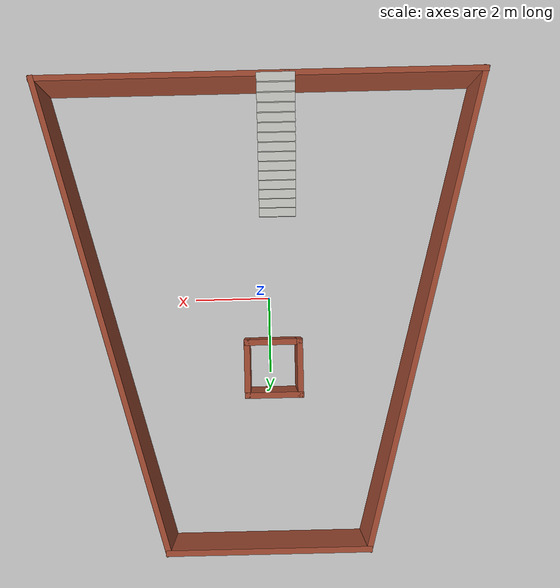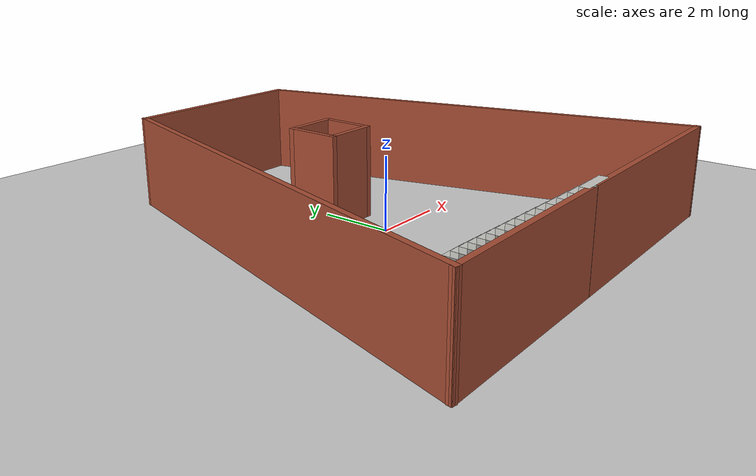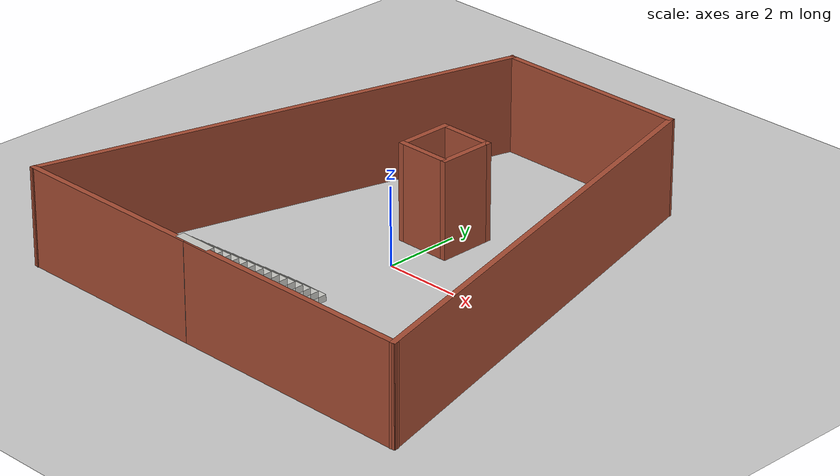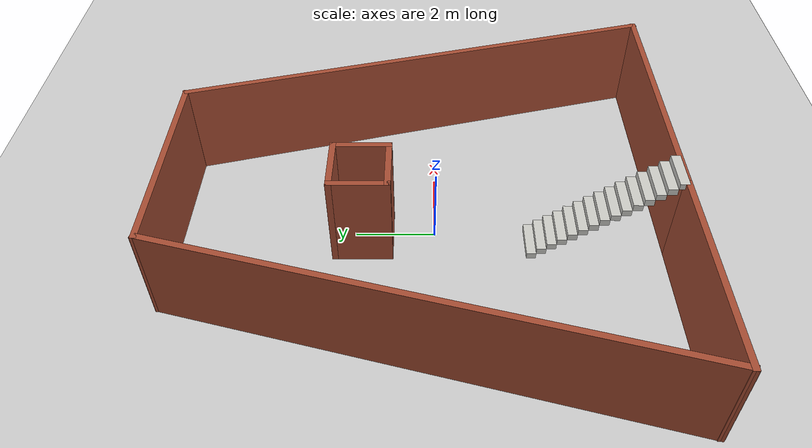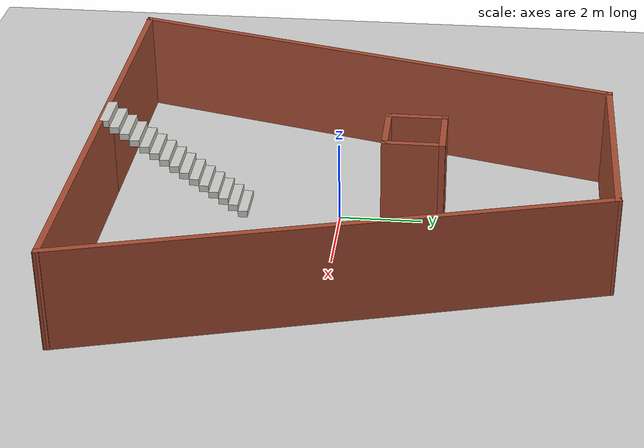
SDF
<sdf version="1.6">
 <world name="default">
  <light name="sun" type="directional">
   <pose>0 0 10 0 -0 0</pose>
   <diffuse>0.8 0.8 0.8 1</diffuse>
   <specular>0.2 0.2 0.2 1</specular>
   <attenuation>
    <range>1000</range>
    <constant>0.9</constant>
    <linear>0.01</linear>
    <quadratic>0.001</quadratic>
   </attenuation>
   <direction>-0.5 0.1 -0.9</direction>
  </light>
  <model name="ground_plane">
   <static>1</static>
   <link name="link">
    <collision name="collision">
     <geometry><plane><normal>0 0 1</normal><size>100 100</size></plane></geometry>
     <surface>
      <contact><collide_bitmask>65535</collide_bitmask></contact>
      <friction><ode><mu>100</mu><mu2>50</mu2></ode></friction>
     </surface>
    </collision>
    <visual name="visual">
     <cast_shadows>0</cast_shadows>
     <geometry><plane><normal>0 0 1</normal><size>100 100</size></plane></geometry>
     <material>
      <script><uri>file://media/materials/scripts/gazebo.material</uri><name>Gazebo/Grey</name></script>
     </material>
    </visual>
   </link>
  </model>
  <gravity>0 0 -9.8</gravity>
  <magnetic_field>6e-06 2.3e-05 -4.2e-05</magnetic_field>
  <atmosphere type="adiabatic"/>
  <physics name="default_physics" default="0" type="ode">
   <max_step_size>0.001</max_step_size>
   <real_time_factor>1</real_time_factor>
   <real_time_update_rate>1000</real_time_update_rate>
  </physics>
  <scene><ambient>0.4 0.4 0.4 1</ambient><background>0.7 0.7 0.7 1</background><shadows>1</shadows></scene>
  <audio><device>default</device></audio>
  <spherical_coordinates>
   <surface_model>EARTH_WGS84</surface_model>
   <latitude_deg>0</latitude_deg>
   <longitude_deg>0</longitude_deg>
   <elevation>0</elevation>
   <heading_deg>0</heading_deg>
  </spherical_coordinates>
  <model name="trapezoidal">
   <pose>0.147087 0.357973 0 0 -0 0</pose>
   <link name="Stairs_1">
    <visual name="Stairs_1_Visual_0">
     <pose>-0.434735 -2.7246 0.083333 0 -0 0</pose>
     <geometry><box><size>1 0.233333 0.166667</size></box></geometry>
     <material>
      <script><uri>file://media/materials/scripts/gazebo.material</uri><name>Gazebo/CeilingTiled</name></script>
      <ambient>1 1 1 1</ambient>
     </material>
     <meta><layer>0</layer></meta>
    </visual>
    <collision name="Stairs_1_Collision_0">
     <geometry><box><size>1 0.233333 0.166667</size></box></geometry>
     <pose>-0.434735 -2.7246 0.083333 0 -0 0</pose>
    </collision>
    <visual name="Stairs_1_Visual_1">
     <pose>-0.434735 -2.95794 0.25 0 -0 0</pose>
     <geometry><box><size>1 0.233333 0.166667</size></box></geometry>
     <material>
      <script><uri>file://media/materials/scripts/gazebo.material</uri><name>Gazebo/CeilingTiled</name></script>
      <ambient>1 1 1 1</ambient>
     </material>
     <meta><layer>0</layer></meta>
    </visual>
    <collision name="Stairs_1_Collision_1">
     <geometry><box><size>1 0.233333 0.166667</size></box></geometry>
     <pose>-0.434735 -2.95794 0.25 0 -0 0</pose>
    </collision>
    <visual name="Stairs_1_Visual_2">
     <pose>-0.434735 -3.19127 0.416667 0 -0 0</pose>
     <geometry><box><size>1 0.233333 0.166667</size></box></geometry>
     <material>
      <script><uri>file://media/materials/scripts/gazebo.material</uri><name>Gazebo/CeilingTiled</name></script>
      <ambient>1 1 1 1</ambient>
     </material>
     <meta><layer>0</layer></meta>
    </visual>
    <collision name="Stairs_1_Collision_2">
     <geometry><box><size>1 0.233333 0.166667</size></box></geometry>
     <pose>-0.434735 -3.19127 0.416667 0 -0 0</pose>
    </collision>
    <visual name="Stairs_1_Visual_3">
     <pose>-0.434735 -3.42461 0.583333 0 -0 0</pose>
     <geometry><box><size>1 0.233333 0.166667</size></box></geometry>
     <material>
      <script><uri>file://media/materials/scripts/gazebo.material</uri><name>Gazebo/CeilingTiled</name></script>
      <ambient>1 1 1 1</ambient>
     </material>
     <meta><layer>0</layer></meta>
    </visual>
    <collision name="Stairs_1_Collision_3">
     <geometry><box><size>1 0.233333 0.166667</size></box></geometry>
     <pose>-0.434735 -3.42461 0.583333 0 -0 0</pose>
    </collision>
    <visual name="Stairs_1_Visual_4">
     <pose>-0.434735 -3.65794 0.75 0 -0 0</pose>
     <geometry><box><size>1 0.233333 0.166667</size></box></geometry>
     <material>
      <script><uri>file://media/materials/scripts/gazebo.material</uri><name>Gazebo/CeilingTiled</name></script>
      <ambient>1 1 1 1</ambient>
     </material>
     <meta><layer>0</layer></meta>
    </visual>
    <collision name="Stairs_1_Collision_4">
     <geometry><box><size>1 0.233333 0.166667</size></box></geometry>
     <pose>-0.434735 -3.65794 0.75 0 -0 0</pose>
    </collision>
    <visual name="Stairs_1_Visual_5">
     <pose>-0.434735 -3.89127 0.916667 0 -0 0</pose>
     <geometry><box><size>1 0.233333 0.166667</size></box></geometry>
     <material>
      <script><uri>file://media/materials/scripts/gazebo.material</uri><name>Gazebo/CeilingTiled</name></script>
      <ambient>1 1 1 1</ambient>
     </material>
     <meta><layer>0</layer></meta>
    </visual>
    <collision name="Stairs_1_Collision_5">
     <geometry><box><size>1 0.233333 0.166667</size></box></geometry>
     <pose>-0.434735 -3.89127 0.916667 0 -0 0</pose>
    </collision>
    <visual name="Stairs_1_Visual_6">
     <pose>-0.434735 -4.1246 1.08333 0 -0 0</pose>
     <geometry><box><size>1 0.233333 0.166667</size></box></geometry>
     <material>
      <script><uri>file://media/materials/scripts/gazebo.material</uri><name>Gazebo/CeilingTiled</name></script>
      <ambient>1 1 1 1</ambient>
     </material>
     <meta><layer>0</layer></meta>
    </visual>
    <collision name="Stairs_1_Collision_6">
     <geometry><box><size>1 0.233333 0.166667</size></box></geometry>
     <pose>-0.434735 -4.1246 1.08333 0 -0 0</pose>
    </collision>
    <visual name="Stairs_1_Visual_7">
     <pose>-0.434735 -4.35794 1.25 0 -0 0</pose>
     <geometry><box><size>1 0.233333 0.166667</size></box></geometry>
     <material>
      <script><uri>file://media/materials/scripts/gazebo.material</uri><name>Gazebo/CeilingTiled</name></script>
      <ambient>1 1 1 1</ambient>
     </material>
     <meta><layer>0</layer></meta>
    </visual>
    <collision name="Stairs_1_Collision_7">
     <geometry><box><size>1 0.233333 0.166667</size></box></geometry>
     <pose>-0.434735 -4.35794 1.25 0 -0 0</pose>
    </collision>
    <visual name="Stairs_1_Visual_8">
     <pose>-0.434735 -4.59127 1.41667 0 -0 0</pose>
     <geometry><box><size>1 0.233333 0.166667</size></box></geometry>
     <material>
      <script><uri>file://media/materials/scripts/gazebo.material</uri><name>Gazebo/CeilingTiled</name></script>
      <ambient>1 1 1 1</ambient>
     </material>
     <meta><layer>0</layer></meta>
    </visual>
    <collision name="Stairs_1_Collision_8">
     <geometry><box><size>1 0.233333 0.166667</size></box></geometry>
     <pose>-0.434735 -4.59127 1.41667 0 -0 0</pose>
    </collision>
    <visual name="Stairs_1_Visual_9">
     <pose>-0.434735 -4.82461 1.58333 0 -0 0</pose>
     <geometry><box><size>1 0.233333 0.166667</size></box></geometry>
     <material>
      <script><uri>file://media/materials/scripts/gazebo.material</uri><name>Gazebo/CeilingTiled</name></script>
      <ambient>1 1 1 1</ambient>
     </material>
     <meta><layer>0</layer></meta>
    </visual>
    <collision name="Stairs_1_Collision_9">
     <geometry><box><size>1 0.233333 0.166667</size></box></geometry>
     <pose>-0.434735 -4.82461 1.58333 0 -0 0</pose>
    </collision>
    <visual name="Stairs_1_Visual_10">
     <pose>-0.434735 -5.05794 1.75 0 -0 0</pose>
     <geometry><box><size>1 0.233333 0.166667</size></box></geometry>
     <material>
      <script><uri>file://media/materials/scripts/gazebo.material</uri><name>Gazebo/CeilingTiled</name></script>
      <ambient>1 1 1 1</ambient>
     </material>
     <meta><layer>0</layer></meta>
    </visual>
    <collision name="Stairs_1_Collision_10">
     <geometry><box><size>1 0.233333 0.166667</size></box></geometry>
     <pose>-0.434735 -5.05794 1.75 0 -0 0</pose>
    </collision>
    <visual name="Stairs_1_Visual_11">
     <pose>-0.434735 -5.29127 1.91667 0 -0 0</pose>
     <geometry><box><size>1 0.233333 0.166667</size></box></geometry>
     <material>
      <script><uri>file://media/materials/scripts/gazebo.material</uri><name>Gazebo/CeilingTiled</name></script>
      <ambient>1 1 1 1</ambient>
     </material>
     <meta><layer>0</layer></meta>
    </visual>
    <collision name="Stairs_1_Collision_11">
     <geometry><box><size>1 0.233333 0.166667</size></box></geometry>
     <pose>-0.434735 -5.29127 1.91667 0 -0 0</pose>
    </collision>
    <visual name="Stairs_1_Visual_12">
     <pose>-0.434735 -5.52461 2.08333 0 -0 0</pose>
     <geometry><box><size>1 0.233333 0.166667</size></box></geometry>
     <material>
      <script><uri>file://media/materials/scripts/gazebo.material</uri><name>Gazebo/CeilingTiled</name></script>
      <ambient>1 1 1 1</ambient>
     </material>
     <meta><layer>0</layer></meta>
    </visual>
    <collision name="Stairs_1_Collision_12">
     <geometry><box><size>1 0.233333 0.166667</size></box></geometry>
     <pose>-0.434735 -5.52461 2.08333 0 -0 0</pose>
    </collision>
    <visual name="Stairs_1_Visual_13">
     <pose>-0.434735 -5.75794 2.25 0 -0 0</pose>
     <geometry><box><size>1 0.233333 0.166667</size></box></geometry>
     <material>
      <script><uri>file://media/materials/scripts/gazebo.material</uri><name>Gazebo/CeilingTiled</name></script>
      <ambient>1 1 1 1</ambient>
     </material>
     <meta><layer>0</layer></meta>
    </visual>
    <collision name="Stairs_1_Collision_13">
     <geometry><box><size>1 0.233333 0.166667</size></box></geometry>
     <pose>-0.434735 -5.75794 2.25 0 -0 0</pose>
    </collision>
    <visual name="Stairs_1_Visual_14">
     <pose>-0.434735 -5.99127 2.41667 0 -0 0</pose>
     <geometry><box><size>1 0.233333 0.166667</size></box></geometry>
     <material>
      <script><uri>file://media/materials/scripts/gazebo.material</uri><name>Gazebo/CeilingTiled</name></script>
      <ambient>1 1 1 1</ambient>
     </material>
     <meta><layer>0</layer></meta>
    </visual>
    <collision name="Stairs_1_Collision_14">
     <geometry><box><size>1 0.233333 0.166667</size></box></geometry>
     <pose>-0.434735 -5.99127 2.41667 0 -0 0</pose>
    </collision>
   </link>
   <link name="Wall_10">
    <collision name="Wall_10_Collision">
     <geometry><box><size>5.25 0.15 2.5</size></box></geometry>
     <pose>0 0 1.25 0 -0 0</pose>
    </collision>
    <visual name="Wall_10_Visual">
     <pose>0 0 1.25 0 -0 0</pose>
     <geometry><box><size>5.25 0.15 2.5</size></box></geometry>
     <material>
      <script><uri>file://media/materials/scripts/gazebo.material</uri><name>Gazebo/Bricks</name></script>
      <ambient>1 1 1 1</ambient>
     </material>
     <meta><layer>0</layer></meta>
    </visual>
    <pose>-0 6.08533 0 0 -0 0</pose>
   </link>
   <link name="Wall_11">
    <collision name="Wall_11_Collision">
     <geometry><box><size>12.75 0.15 2.5</size></box></geometry>
     <pose>0 0 1.25 0 -0 0</pose>
    </collision>
    <visual name="Wall_11_Visual">
     <pose>0 0 1.25 0 -0 0</pose>
     <geometry><box><size>12.75 0.15 2.5</size></box></geometry>
     <material>
      <script><uri>file://media/materials/scripts/gazebo.material</uri><name>Gazebo/Bricks</name></script>
      <ambient>1 1 1 1</ambient>
     </material>
     <meta><layer>0</layer></meta>
    </visual>
    <pose>4.18056 -0 0 0 -0 -1.309</pose>
   </link>
   <link name="Wall_12">
    <collision name="Wall_12_Collision">
     <geometry><box><size>6.67224 0.15 2.5</size></box></geometry>
     <pose>0 0 1.25 0 -0 0</pose>
    </collision>
    <visual name="Wall_12_Visual">
     <pose>0 0 1.25 0 -0 0</pose>
     <geometry><box><size>6.67224 0.15 2.5</size></box></geometry>
     <material>
      <script><uri>file://media/materials/scripts/gazebo.material</uri><name>Gazebo/Bricks</name></script>
      <ambient>1 1 1 1</ambient>
     </material>
     <meta><layer>0</layer></meta>
    </visual>
    <pose>2.55 -6.08533 0 0 -0 3.14159</pose>
   </link>
   <link name="Wall_13">
    <collision name="Wall_13_Collision">
     <geometry><box><size>0.16 0.15 2.5</size></box></geometry>
     <pose>0 0 1.25 0 -0 0</pose>
    </collision>
    <visual name="Wall_13_Visual">
     <pose>0 0 1.25 0 -0 0</pose>
     <geometry><box><size>0.16 0.15 2.5</size></box></geometry>
     <material>
      <script><uri>file://media/materials/scripts/gazebo.material</uri><name>Gazebo/Grey</name></script>
      <ambient>1 1 1 1</ambient>
     </material>
     <meta><layer>0</layer></meta>
    </visual>
    <pose>-0.70612 -6.08533 0 0 -0 0</pose>
   </link>
   <link name="Wall_15">
    <collision name="Wall_15_Collision">
     <geometry><box><size>1.5 0.15 2.5</size></box></geometry>
     <pose>0 0 1.25 0 -0 0</pose>
    </collision>
    <visual name="Wall_15_Visual">
     <pose>0 0 1.25 0 -0 0</pose>
     <geometry><box><size>1.5 0.15 2.5</size></box></geometry>
     <material>
      <script><uri>file://media/materials/scripts/gazebo.material</uri><name>Gazebo/Bricks</name></script>
      <ambient>1 1 1 1</ambient>
     </material>
     <meta><layer>0</layer></meta>
    </visual>
    <pose>-0.219713 2.11495 0 0 -0 3.14159</pose>
   </link>
   <link name="Wall_16">
    <collision name="Wall_16_Collision">
     <geometry><box><size>1.5 0.15 2.5</size></box></geometry>
     <pose>0 0 1.25 0 -0 0</pose>
    </collision>
    <visual name="Wall_16_Visual">
     <pose>0 0 1.25 0 -0 0</pose>
     <geometry><box><size>1.5 0.15 2.5</size></box></geometry>
     <material>
      <script><uri>file://media/materials/scripts/gazebo.material</uri><name>Gazebo/Bricks</name></script>
      <ambient>1 1 1 1</ambient>
     </material>
     <meta><layer>0</layer></meta>
    </visual>
    <pose>-0.894713 1.43995 0 0 -0 -1.5708</pose>
   </link>
   <link name="Wall_17">
    <collision name="Wall_17_Collision">
     <geometry><box><size>1.5 0.15 2.5</size></box></geometry>
     <pose>0 0 1.25 0 -0 0</pose>
    </collision>
    <visual name="Wall_17_Visual">
     <pose>0 0 1.25 0 -0 0</pose>
     <geometry><box><size>1.5 0.15 2.5</size></box></geometry>
     <material>
      <script><uri>file://media/materials/scripts/gazebo.material</uri><name>Gazebo/Bricks</name></script>
      <ambient>1 1 1 1</ambient>
     </material>
     <meta><layer>0</layer></meta>
    </visual>
    <pose>-0.219713 0.764954 0 0 -0 0</pose>
   </link>
   <link name="Wall_18">
    <collision name="Wall_18_Collision">
     <geometry><box><size>1.5 0.15 2.5</size></box></geometry>
     <pose>0 0 1.25 0 -0 0</pose>
    </collision>
    <visual name="Wall_18_Visual">
     <pose>0 0 1.25 0 -0 0</pose>
     <geometry><box><size>1.5 0.15 2.5</size></box></geometry>
     <material>
      <script><uri>file://media/materials/scripts/gazebo.material</uri><name>Gazebo/Bricks</name></script>
      <ambient>1 1 1 1</ambient>
     </material>
     <meta><layer>0</layer></meta>
    </visual>
    <pose>0.455287 1.43995 0 0 -0 1.5708</pose>
   </link>
   <link name="Wall_8">
    <collision name="Wall_8_Collision">
     <geometry><box><size>5.25 0.15 2.5</size></box></geometry>
     <pose>0 0 1.25 0 -0 0</pose>
    </collision>
    <visual name="Wall_8_Visual">
     <pose>0 0 1.25 0 -0 0</pose>
     <geometry><box><size>5.25 0.15 2.5</size></box></geometry>
     <material>
      <script><uri>file://media/materials/scripts/gazebo.material</uri><name>Gazebo/Bricks</name></script>
      <ambient>1 1 1 1</ambient>
     </material>
     <meta><layer>0</layer></meta>
    </visual>
    <pose>-3.26112 -6.08533 0 0 -0 3.14159</pose>
   </link>
   <link name="Wall_9">
    <collision name="Wall_9_Collision">
     <geometry><box><size>12.75 0.15 2.5</size></box></geometry>
     <pose>0 0 1.25 0 -0 0</pose>
    </collision>
    <visual name="Wall_9_Visual">
     <pose>0 0 1.25 0 -0 0</pose>
     <geometry><box><size>12.75 0.15 2.5</size></box></geometry>
     <material>
      <script><uri>file://media/materials/scripts/gazebo.material</uri><name>Gazebo/Bricks</name></script>
      <ambient>1 1 1 1</ambient>
     </material>
     <meta><layer>0</layer></meta>
    </visual>
    <pose>-4.18056 -0 0 0 -0 1.309</pose>
   </link>
   <static>1</static>
  </model>
 </world>
</sdf>
